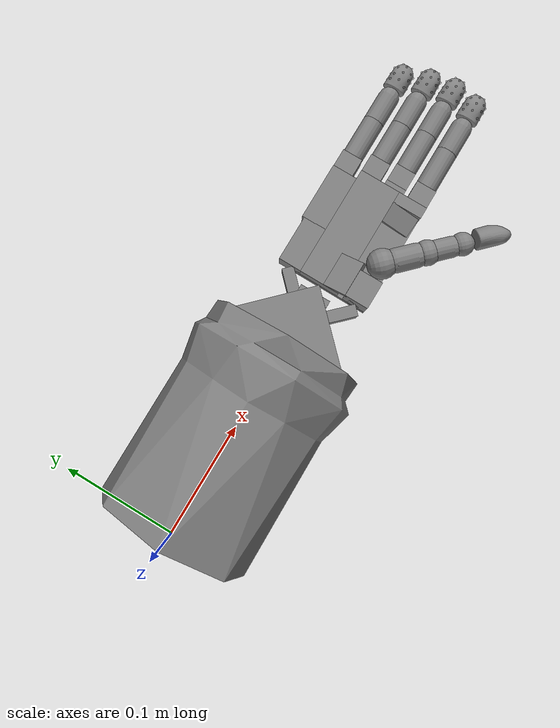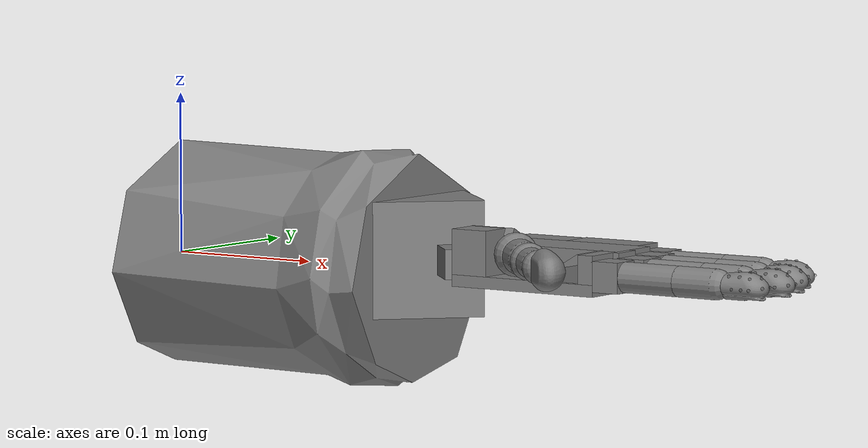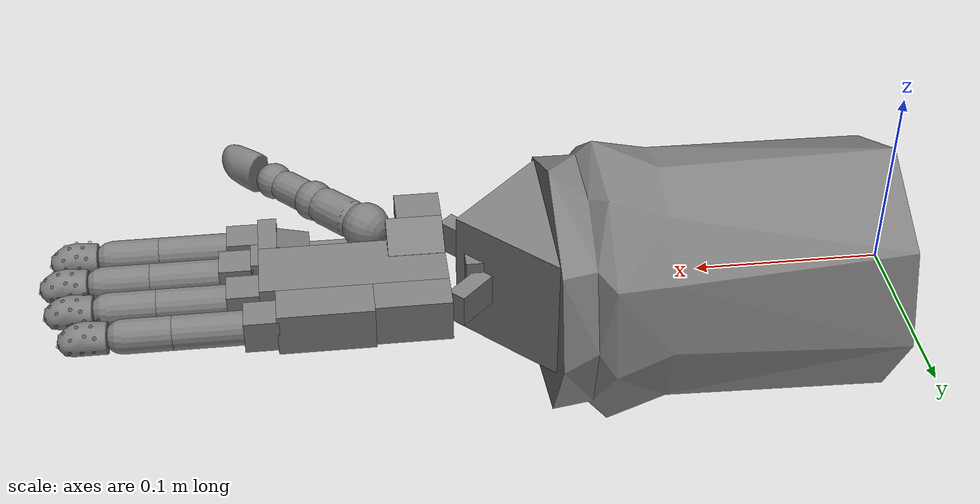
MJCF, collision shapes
<mujoco model="shadow_hand">
    <compiler autolimits="true" angle="radian" meshdir="new_assets" />
    <option impratio="10" cone="elliptic" />
    <default>
        <default class="right_hand">
            <mesh scale="0.001 0.001 0.001" />
            <joint axis="1 0 0" armature="0.00020000000000000001" damping="0.050000000000000003"
                frictionloss="0.01" />
            <position forcerange="-1 1" />
            <default class="wrist">
                <joint damping="0.5" />
                <default class="wrist_y">
                    <joint axis="0 1 0" range="-0.48899999999999999 0.17399999999999999" />
                    <position ctrlrange="-0.52359900000000004 0.17453299999999999"
                        forcerange="-10 10" kp="10" />
                </default>
                <default class="wrist_x">
                    <joint range="-0.69813199999999997 0.48869200000000002" />
                    <position ctrlrange="-0.69813199999999997 0.48869200000000002"
                        forcerange="-5 5" kp="8" />
                </default>
            </default>
            <default class="thumb">
                <default class="thbase">
                    <joint axis="0 0 -1" range="-1.0471999999999999 1.0471999999999999" />
                    <position ctrlrange="-1.0471999999999999 1.0471999999999999"
                        forcerange="-3 3" kp="0.40000000000000002" />
                </default>
                <default class="thproximal">
                    <joint range="0 1.22173" />
                    <position ctrlrange="0 1.22173" forcerange="-2 2" />
                </default>
                <default class="thhub">
                    <joint range="-0.20943999999999999 0.20943999999999999" />
                    <position ctrlrange="-0.20943999999999999 0.20943999999999999" kp="0.5" />
                </default>
                <default class="thmiddle">
                    <joint axis="0 -1 0" range="-0.69813199999999997 0.69813199999999997" />
                    <position ctrlrange="-0.69813199999999997 0.69813199999999997" kp="1.5" />
                </default>
                <default class="thdistal">
                    <joint range="-0.261799 1.5708" />
                    <position ctrlrange="-0.261799 1.5708" />
                </default>
            </default>
            <default class="metacarpal">
                <joint axis="0.57357599999999997 0 0.81915199999999999"
                    range="0 0.78539800000000004" />
                <position ctrlrange="0 0.78539800000000004" />
            </default>
            <default class="knuckle">
                <joint axis="0 -1 0" range="-0.34906599999999999 0.34906599999999999" />
                <position ctrlrange="-0.34906599999999999 0.34906599999999999" />
            </default>
            <default class="proximal">
                <joint range="-0.261799 1.5708" />
                <position ctrlrange="-0.261799 1.5708" />
            </default>
            <default class="middle_distal">
                <joint range="0 1.5708" />
                <position ctrlrange="0 3.1415000000000002" kp="0.5" />
            </default>
            <default class="plastic">
                <geom solref="0.0050000000000000001 1" solimp="0.5 0.98999999999999999 0.0001" />
                <default class="plastic_visual">
                    <geom type="mesh" contype="0" conaffinity="0" group="2" material="black" />
                </default>
                <default class="plastic_collision">
                    <geom group="3" />
                </default>
            </default>
        </default>
    </default>
    <asset>
        <material name="black" specular="0.5" shininess="0.25"
            rgba="0.16355 0.16355 0.16355 1" />
        <material name="gray" specular="0" shininess="0.25"
            rgba="0.80847999999999998 0.80847999999999998 0.80847999999999998 1" />
        <material name="metallic" specular="0" shininess="0.25"
            rgba="0.90000000000000002 0.90000000000000002 0.90000000000000002 1" />
        <material name="tip_red" specular="0" shininess="0.25"
            rgba="0.3411764705882353 0.011764705882352941 0.082352941176470587 1" />
        <mesh name="forearm_0" class="right_hand"
            file="forearm_0.obj" />
        <mesh name="forearm_1" class="right_hand"
            file="forearm_1.obj" />
        <mesh name="forearm_collision" class="right_hand"
            file="forearm_collision_20_pct.stl" />
        <mesh name="wrist" class="right_hand"
            file="wrist.obj" />
        <mesh name="palm" class="right_hand"
            file="palm.obj" />
        <mesh name="f_knuckle" class="right_hand"
            file="f_knuckle.obj" />
        <mesh name="f_proximal" class="right_hand"
            file="f_proximal.obj" />
        <mesh name="f_middle" class="right_hand"
            file="f_middle.obj" />
        <mesh name="f_distal_pst" class="right_hand"
            file="f_distal_pst.obj" />
        <mesh name="lf_metacarpal" class="right_hand"
            file="lf_metacarpal.obj" />
        <mesh name="th_proximal" class="right_hand"
            file="th_proximal.obj" />
        <mesh name="th_middle" class="right_hand"
            file="th_middle.obj" />
        <mesh name="th_distal_pst" class="right_hand"
            file="th_distal_pst.obj" />
        <mesh name="f_distal_mstXL" class="right_hand"
            file="f_distal_mstXL_20_pct.stl" />
        <mesh name="th_distal_mst" class="right_hand"
            file="th_distal_mst_20_pct.stl" />
    </asset>
    <worldbody>
        <body name="rh_forearm_base" childclass="right_hand" pos="0 0 0" quat="0 1 0 1">
            <inertial pos="0 0 0.089999999999999997" mass="3"
                diaginertia="0.0138 0.0138 0.0074400000000000004" />
            <geom class="plastic_visual" material="gray" mesh="forearm_0" />
            <geom class="plastic_visual" mesh="forearm_1" />
            <geom class="plastic_collision" type="mesh"
                mesh="forearm_collision" />
            <geom class="plastic_collision" type="box"
                size="0.035000000000000003 0.035000000000000003 0.035000000000000003"
                pos="0.01 0 0.18099999999999999" quat="0.38018800000000003 0.92490899999999998 0 0" />
            <body name="rh_wrist" pos="0.01 0 0.21301" quat="1 0 0 1">
                <inertial pos="0 0 0.029000000000000001" quat="0.5 0.5 0.5 0.5"
                    mass="0.10000000000000001"
                    diaginertia="6.3999999999999997e-05 4.3800000000000001e-05 3.4999999999999997e-05" />
                <joint name="rh_WRJ2" class="wrist_y" />
                <geom class="plastic_visual" material="metallic"
                    mesh="wrist" />
                <geom class="plastic_collision" type="box"
                    size="0.0135 0.0135 0.014999999999999999"
                    quat="0.499998 0.5 0.5 -0.50000199999999995" />
                <geom class="plastic_collision" type="box"
                    size="0.010999999999999999 0.010999999999999999 0.0050000000000000001"
                    pos="-0.025999999999999999 0 0.034000000000000002" quat="1 0 1 0" />
                <geom class="plastic_collision" type="box"
                    size="0.010999999999999999 0.010999999999999999 0.0050000000000000001"
                    pos="0.031 0 0.034000000000000002" quat="1 0 1 0" />
                <geom class="plastic_collision" type="box"
                    size="0.0135 0.0089999999999999993 0.0050000000000000001"
                    pos="-0.021000000000000001 0 0.010999999999999999"
                    quat="0.92387900000000001 0 0.38268400000000002 0" />
                <geom class="plastic_collision" type="box"
                    size="0.0135 0.0089999999999999993 0.0050000000000000001"
                    pos="0.025999999999999999 0 0.01"
                    quat="0.92387900000000001 0 -0.38268400000000002 0" />
                <body name="rh_palm" pos="0 0 0.034000000000000002">
                    <inertial pos="0 0 0.035000000000000003" quat="1 0 0 1"
                        mass="0.29999999999999999"
                        diaginertia="0.0005287 0.00035809999999999998 0.00019100000000000001" />
                    <joint name="rh_WRJ1" class="wrist_x" />
                    <site name="grasp_site" group="4"
                        pos="0 -0.035000000000000003 0.089999999999999997" />
                    <geom class="plastic_visual" mesh="palm" />
                    <geom class="plastic_collision" type="box"
                        size="0.031 0.0035000000000000001 0.049000000000000002"
                        pos="0.010999999999999999 0.0085000000000000006 0.037999999999999999" />
                    <geom class="plastic_collision" type="box"
                        size="0.017999999999999999 0.0085000000000000006 0.049000000000000002"
                        pos="-0.002 -0.0035000000000000001 0.037999999999999999" />
                    <geom class="plastic_collision" type="box"
                        size="0.012999999999999999 0.0085000000000000006 0.0050000000000000001"
                        pos="0.029000000000000001 -0.0035000000000000001 0.082000000000000003" />
                    <geom class="plastic_collision" type="box"
                        size="0.012999999999999999 0.0070000000000000001 0.0089999999999999993"
                        pos="0.026499999999999999 -0.001 0.070000000000000007"
                        quat="0.98724100000000004 0.099054500000000004 0.0124467 0.124052" />
                    <geom class="plastic_collision" type="box"
                        size="0.010500000000000001 0.0135 0.012"
                        pos="0.0315 -0.0085000000000000006 0.001" />
                    <geom class="plastic_collision" type="box"
                        size="0.010999999999999999 0.0025000000000000001 0.014999999999999999"
                        pos="0.012500000000000001 -0.014999999999999999 0.0040000000000000001"
                        quat="0.97133800000000003 0 0 -0.237703" />
                    <geom class="plastic_collision" type="box"
                        size="0.0089999999999999993 0.012 0.002"
                        pos="0.010999999999999999 0 0.088999999999999996" />
                    <geom class="plastic_collision" type="box"
                        size="0.01 0.012 0.02" pos="-0.029999999999999999 0 0.0089999999999999993" />
                    <body name="rh_ffknuckle" pos="0.033000000000000002 0 0.095000000000000001">
                        <inertial pos="0 0 0" quat="0.5 0.5 -0.5 0.5" mass="0.0080000000000000002"
                            diaginertia="3.2000000000000001e-07 2.6e-07 2.6e-07" />
                        <joint name="rh_FFJ4" class="knuckle" />
                        <geom class="plastic_visual" material="metallic"
                            pos="0 0 0.00050000000000000001" mesh="f_knuckle" />
                        <geom class="plastic_collision" type="box"
                            size="0.0089999999999999993 0.0089999999999999993 0.0089999999999999993"
                            quat="1 0 1 0" />
                        <body name="rh_ffproximal">
                            <inertial pos="0 0 0.022499999999999999" quat="1 0 0 1"
                                mass="0.029999999999999999"
                                diaginertia="1.0000000000000001e-05 9.7999999999999993e-06 1.7999999999999999e-06" />
                            <joint name="rh_FFJ3" class="proximal" />
                            <geom class="plastic_visual" mesh="f_proximal" />
                            <geom class="plastic_collision" type="capsule"
                                size="0.0089999999999999993 0.02" pos="0 0 0.025000000000000001" />
                            <body name="rh_ffmiddle" pos="0 0 0.044999999999999998">
                                <inertial pos="0 0 0.012500000000000001" quat="1 0 0 1"
                                    mass="0.017000000000000001"
                                    diaginertia="2.7e-06 2.6000000000000001e-06 8.7000000000000003e-07" />
                                <joint name="rh_FFJ2" class="middle_distal" />
                                <geom class="plastic_visual"
                                    mesh="f_middle" />
                                <geom class="plastic_collision"
                                    type="capsule" size="0.0089999999999999993 0.012500000000000001"
                                    pos="0 0 0.012500000000000001" />
                                <body name="rh_ffdistal" pos="0 0 0.025000000000000001">
                                    <inertial pos="0 0 0.013076900000000001" quat="1 0 0 1"
                                        mass="0.012999999999999999"
                                        diaginertia="1.28092e-06 1.1209200000000001e-06 5.3000000000000001e-07" />
                                    <joint name="rh_FFJ1" class="middle_distal" />
                                    <geom class="plastic_visual"
                                        material="tip_red" mesh="f_distal_mstXL" />
                                    <geom class="plastic_collision"
                                        type="mesh" mesh="f_distal_mstXL" />
                                    <site name="rh_ffdistal_tip" pos="0 0 0.025999999999999999" />
                                    <site name="rh_ffdistal_0" rgba="0 0 0 0.10000000000000001"
                                        size="0.001"
                                        pos="-0.0089999999999999993 0.001 0.019999999999999997"
                                        quat="-0.51332375272133191 -0.45928967348750754 0.48330481981365164 0.54034079233824406" />
                                    <site name="rh_ffdistal_1" rgba="0 0 0 0.10000000000000001"
                                        size="0.001"
                                        pos="-0.0060000000000000001 -0.0070000000000000001 0.017999999999999999"
                                        quat="0.2529586446421252 0.66989048185859246 -0.65289326067710574 -0.24695962540160049" />
                                    <site name="rh_ffdistal_2" rgba="0 0 0 0.10000000000000001"
                                        size="0.001"
                                        pos="-0.0070000000000000001 -0.0060000000000000001 0.012999999999999999"
                                        quat="0.22492365137833648 0.70276145297320181 -0.64178215193285315 -0.2089290806136547" />
                                    <site name="rh_ffdistal_3" rgba="0 0 0 0.10000000000000001"
                                        size="0.001"
                                        pos="-0.0089999999999999993 0.001 0.013999999999999999"
                                        quat="-0.53132580260612172 -0.45127671746772302 0.46428469380271281 0.54633500606957153" />
                                    <site name="rh_ffdistal_4" rgba="0 0 0 0.10000000000000001"
                                        size="0.001"
                                        pos="-0.0089999999999999993 0.001 0.025999999999999999"
                                        quat="-0.43495911576458707 -0.41496099549954835 0.55294802532831389 0.57694576964636013" />
                                    <site name="rh_ffdistal_5" rgba="0 0 0 0.10000000000000001"
                                        size="0.001"
                                        pos="0.0060000000000000001 -0.0050000000000000001 0.024999999999999998"
                                        quat="0.14602760182536398 -0.54510303421111916 0.77514651653874744 -0.28405369122194096" />
                                    <site name="rh_ffdistal_6" rgba="0 0 0 0.10000000000000001"
                                        size="0.001"
                                        pos="0.0089999999999999993 0.001 0.025999999999999999"
                                        quat="-0.43617952481929767 0.4141704662274982 -0.55122687654915836 0.57823799391182118" />
                                    <site name="rh_ffdistal_7" rgba="0 0 0 0.10000000000000001"
                                        size="0.001"
                                        pos="0.0070000000000000001 -0.0060000000000000001 0.019"
                                        quat="-0.25793475076104228 0.67083030139790467 -0.64883586528649795 0.249936773993258" />
                                    <site name="rh_ffdistal_8" rgba="0 0 0 0.10000000000000001"
                                        size="0.001"
                                        pos="0 -0.0080000000000000002 0.014999999999999999"
                                        quat="-0.00099992500843644515 0.73694473121766024 -0.67594930570303713 0.0019998500168728912" />
                                    <site name="rh_ffdistal_9" rgba="0 0 0 0.10000000000000001"
                                        size="0.001"
                                        pos="-0.0060000000000000001 -0.0050000000000000001 0.024999999999999998"
                                        quat="-0.14590650388691498 -0.54565035015243535 0.77450370213944575 0.28481749046418325" />
                                    <site name="rh_ffdistal_10" rgba="0 0 0 0.10000000000000001"
                                        size="0.001"
                                        pos="0.0089999999999999993 0.001 0.014999999999999999"
                                        quat="-0.52788255919441562 0.45589857384972277 -0.46889568231473661 0.54187944523366161" />
                                    <site name="rh_ffdistal_11" rgba="0 0 0 0.10000000000000001"
                                        size="0.001"
                                        pos="0.0040000000000000001 0 0.032000000000000001"
                                        quat="0.1050133375408553 -0.21402718317850514 0.74909514112476794 -0.61807850095474848" />
                                    <site name="rh_ffdistal_12" rgba="0 0 0 0.10000000000000001"
                                        size="0.001"
                                        pos="0 -0.0050000000000000001 0.028999999999999998"
                                        quat="0.0090026922075152616 -0.43913131989991105 0.89826862248318939 -0.014004187878357071" />
                                    <site name="rh_ffdistal_13" rgba="0 0 0 0.10000000000000001"
                                        size="0.001"
                                        pos="-0.0040000000000000001 0 0.032000000000000001"
                                        quat="-0.23003807445224358 0.062010263547996082 0.74912399028143661 -0.61810230439776748" />
                                    <site name="rh_ffdistal_14" rgba="0 0 0 0.10000000000000001"
                                        size="0.001"
                                        pos="0.0070000000000000001 -0.0060000000000000001 0.011999999999999999"
                                        quat="-0.23090973193876932 0.69872685119134037 -0.64174912512852755 0.2159155935011868" />
                                    <site name="rh_ffdistal_15" rgba="0 0 0 0.10000000000000001"
                                        size="0.001"
                                        pos="0.0089999999999999993 0.001 0.020999999999999998"
                                        quat="-0.50592968066124255 0.46693510053122572 -0.49193162625559544 0.5329259284435619" />
                                    <site name="rh_ffdistal_16" rgba="0 0 0 0.10000000000000001"
                                        size="0.001"
                                        pos="0 -0.0080000000000000002 0.021999999999999999"
                                        quat="0.0039998800053997292 -0.63798086086125694 0.76997690103944805 -0.0099997000134993252" />
                                </body>
                            </body>
                        </body>
                    </body>
                    <body name="rh_mfknuckle" pos="0.010999999999999999 0 0.099000000000000005">
                        <inertial pos="0 0 0" quat="0.5 0.5 -0.5 0.5" mass="0.0080000000000000002"
                            diaginertia="3.2000000000000001e-07 2.6e-07 2.6e-07" />
                        <joint name="rh_MFJ4" class="knuckle" />
                        <geom class="plastic_visual" material="metallic"
                            pos="0 0 0.00050000000000000001" mesh="f_knuckle" />
                        <geom class="plastic_collision" type="box"
                            size=" 0.0089999999999999993 0.0089999999999999993 0.0089999999999999993"
                            quat="1 0 1 0" />
                        <body name="rh_mfproximal">
                            <inertial pos="0 0 0.022499999999999999" quat="1 0 0 1"
                                mass="0.029999999999999999"
                                diaginertia="1.0000000000000001e-05 9.7999999999999993e-06 1.7999999999999999e-06" />
                            <joint name="rh_MFJ3" class="proximal" />
                            <geom class="plastic_visual" mesh="f_proximal" />
                            <geom class="plastic_collision" type="capsule"
                                size="0.0089999999999999993 0.02" pos="0 0 0.025000000000000001" />
                            <body name="rh_mfmiddle" pos="0 0 0.044999999999999998">
                                <inertial pos="0 0 0.012500000000000001" quat="1 0 0 1"
                                    mass="0.017000000000000001"
                                    diaginertia="2.7e-06 2.6000000000000001e-06 8.7000000000000003e-07" />
                                <joint name="rh_MFJ2" class="middle_distal" />
                                <geom class="plastic_visual"
                                    mesh="f_middle" />
                                <geom class="plastic_collision"
                                    type="capsule" size="0.0089999999999999993 0.012500000000000001"
                                    pos="0 0 0.012500000000000001" />
                                <body name="rh_mfdistal" pos="0 0 0.025000000000000001">
                                    <inertial pos="0 0 0.013076900000000001" quat="1 0 0 1"
                                        mass="0.012999999999999999"
                                        diaginertia="1.28092e-06 1.1209200000000001e-06 5.3000000000000001e-07" />
                                    <joint name="rh_MFJ1" class="middle_distal" />
                                    <geom class="plastic_visual"
                                        material="tip_red" mesh="f_distal_mstXL" />
                                    <geom class="plastic_collision"
                                        type="mesh" mesh="f_distal_mstXL" />
                                    <site name="rh_mfdistal_tip" pos="0 0 0.025999999999999999" />
                                    <site name="rh_mfdistal_0" rgba="0 0 0 0.10000000000000001"
                                        size="0.001"
                                        pos="-0.0089999999999999993 0.001 0.019999999999999997"
                                        quat="-0.51332375272133191 -0.45928967348750754 0.48330481981365164 0.54034079233824406" />
                                    <site name="rh_mfdistal_1" rgba="0 0 0 0.10000000000000001"
                                        size="0.001"
                                        pos="-0.0060000000000000001 -0.0070000000000000001 0.017999999999999999"
                                        quat="0.2529586446421252 0.66989048185859246 -0.65289326067710574 -0.24695962540160049" />
                                    <site name="rh_mfdistal_2" rgba="0 0 0 0.10000000000000001"
                                        size="0.001"
                                        pos="-0.0070000000000000001 -0.0060000000000000001 0.012999999999999999"
                                        quat="0.22492365137833648 0.70276145297320181 -0.64178215193285315 -0.2089290806136547" />
                                    <site name="rh_mfdistal_3" rgba="0 0 0 0.10000000000000001"
                                        size="0.001"
                                        pos="-0.0089999999999999993 0.001 0.013999999999999999"
                                        quat="-0.53132580260612172 -0.45127671746772302 0.46428469380271281 0.54633500606957153" />
                                    <site name="rh_mfdistal_4" rgba="0 0 0 0.10000000000000001"
                                        size="0.001"
                                        pos="-0.0089999999999999993 0.001 0.025999999999999999"
                                        quat="-0.43495911576458707 -0.41496099549954835 0.55294802532831389 0.57694576964636013" />
                                    <site name="rh_mfdistal_5" rgba="0 0 0 0.10000000000000001"
                                        size="0.001"
                                        pos="0.0060000000000000001 -0.0050000000000000001 0.024999999999999998"
                                        quat="0.14602760182536398 -0.54510303421111916 0.77514651653874744 -0.28405369122194096" />
                                    <site name="rh_mfdistal_6" rgba="0 0 0 0.10000000000000001"
                                        size="0.001"
                                        pos="0.0089999999999999993 0.001 0.025999999999999999"
                                        quat="-0.43617952481929767 0.4141704662274982 -0.55122687654915836 0.57823799391182118" />
                                    <site name="rh_mfdistal_7" rgba="0 0 0 0.10000000000000001"
                                        size="0.001"
                                        pos="0.0070000000000000001 -0.0060000000000000001 0.019"
                                        quat="-0.25793475076104228 0.67083030139790467 -0.64883586528649795 0.249936773993258" />
                                    <site name="rh_mfdistal_8" rgba="0 0 0 0.10000000000000001"
                                        size="0.001"
                                        pos="0 -0.0080000000000000002 0.014999999999999999"
                                        quat="-0.00099992500843644515 0.73694473121766024 -0.67594930570303713 0.0019998500168728912" />
                                    <site name="rh_mfdistal_9" rgba="0 0 0 0.10000000000000001"
                                        size="0.001"
                                        pos="-0.0060000000000000001 -0.0050000000000000001 0.024999999999999998"
                                        quat="-0.14590650388691498 -0.54565035015243535 0.77450370213944575 0.28481749046418325" />
                                    <site name="rh_mfdistal_10" rgba="0 0 0 0.10000000000000001"
                                        size="0.001"
                                        pos="0.0089999999999999993 0.001 0.014999999999999999"
                                        quat="-0.52788255919441562 0.45589857384972277 -0.46889568231473661 0.54187944523366161" />
                                    <site name="rh_mfdistal_11" rgba="0 0 0 0.10000000000000001"
                                        size="0.001"
                                        pos="0.0040000000000000001 0 0.032000000000000001"
                                        quat="0.1050133375408553 -0.21402718317850514 0.74909514112476794 -0.61807850095474848" />
                                    <site name="rh_mfdistal_12" rgba="0 0 0 0.10000000000000001"
                                        size="0.001"
                                        pos="0 -0.0050000000000000001 0.028999999999999998"
                                        quat="0.0090026922075152616 -0.43913131989991105 0.89826862248318939 -0.014004187878357071" />
                                    <site name="rh_mfdistal_13" rgba="0 0 0 0.10000000000000001"
                                        size="0.001"
                                        pos="-0.0040000000000000001 0 0.032000000000000001"
                                        quat="-0.23003807445224358 0.062010263547996082 0.74912399028143661 -0.61810230439776748" />
                                    <site name="rh_mfdistal_14" rgba="0 0 0 0.10000000000000001"
                                        size="0.001"
                                        pos="0.0070000000000000001 -0.0060000000000000001 0.011999999999999999"
                                        quat="-0.23090973193876932 0.69872685119134037 -0.64174912512852755 0.2159155935011868" />
                                    <site name="rh_mfdistal_15" rgba="0 0 0 0.10000000000000001"
                                        size="0.001"
                                        pos="0.0089999999999999993 0.001 0.020999999999999998"
                                        quat="-0.50592968066124255 0.46693510053122572 -0.49193162625559544 0.5329259284435619" />
                                    <site name="rh_mfdistal_16" rgba="0 0 0 0.10000000000000001"
                                        size="0.001"
                                        pos="0 -0.0080000000000000002 0.021999999999999999"
                                        quat="0.0039998800053997292 -0.63798086086125694 0.76997690103944805 -0.0099997000134993252" />
                                </body>
                            </body>
                        </body>
                    </body>
                    <body name="rh_rfknuckle" pos="-0.010999999999999999 0 0.095000000000000001">
                        <inertial pos="0 0 0" quat="0.5 0.5 -0.5 0.5" mass="0.0080000000000000002"
                            diaginertia="3.2000000000000001e-07 2.6e-07 2.6e-07" />
                        <joint name="rh_RFJ4" class="knuckle" axis="0 1 0" />
                        <geom class="plastic_visual" material="metallic"
                            pos="0 0 0.00050000000000000001" mesh="f_knuckle" />
                        <geom class="plastic_collision" type="box"
                            size="0.0089999999999999993 0.0089999999999999993 0.0089999999999999993"
                            quat="1 0 1 0" />
                        <body name="rh_rfproximal">
                            <inertial pos="0 0 0.022499999999999999" quat="1 0 0 1"
                                mass="0.029999999999999999"
                                diaginertia="1.0000000000000001e-05 9.7999999999999993e-06 1.7999999999999999e-06" />
                            <joint name="rh_RFJ3" class="proximal" />
                            <geom class="plastic_visual" mesh="f_proximal" />
                            <geom class="plastic_collision" type="capsule"
                                size="0.0089999999999999993 0.02" pos="0 0 0.025000000000000001" />
                            <body name="rh_rfmiddle" pos="0 0 0.044999999999999998">
                                <inertial pos="0 0 0.012500000000000001" quat="1 0 0 1"
                                    mass="0.017000000000000001"
                                    diaginertia="2.7e-06 2.6000000000000001e-06 8.7000000000000003e-07" />
                                <joint name="rh_RFJ2" class="middle_distal" />
                                <geom class="plastic_visual"
                                    mesh="f_middle" />
                                <geom class="plastic_collision"
                                    type="capsule" size="0.0089999999999999993 0.012500000000000001"
                                    pos="0 0 0.012500000000000001" />
                                <body name="rh_rfdistal" pos="0 0 0.025000000000000001">
                                    <inertial pos="0 0 0.013076900000000001" quat="1 0 0 1"
                                        mass="0.012999999999999999"
                                        diaginertia="1.28092e-06 1.1209200000000001e-06 5.3000000000000001e-07" />
                                    <joint name="rh_RFJ1" class="middle_distal" />
                                    <geom class="plastic_visual"
                                        material="tip_red" mesh="f_distal_mstXL" />
                                    <geom class="plastic_collision"
                                        type="mesh" mesh="f_distal_mstXL" />
                                    <site name="rh_rfdistal_tip" pos="0 0 0.025999999999999999" />
                                    <site name="rh_rfdistal_0" rgba="0 0 0 0.10000000000000001"
                                        size="0.001"
                                        pos="-0.0089999999999999993 0.001 0.019999999999999997"
                                        quat="-0.51332375272133191 -0.45928967348750754 0.48330481981365164 0.54034079233824406" />
                                    <site name="rh_rfdistal_1" rgba="0 0 0 0.10000000000000001"
                                        size="0.001"
                                        pos="-0.0060000000000000001 -0.0070000000000000001 0.017999999999999999"
                                        quat="0.2529586446421252 0.66989048185859246 -0.65289326067710574 -0.24695962540160049" />
                                    <site name="rh_rfdistal_2" rgba="0 0 0 0.10000000000000001"
                                        size="0.001"
                                        pos="-0.0070000000000000001 -0.0060000000000000001 0.012999999999999999"
                                        quat="0.22492365137833648 0.70276145297320181 -0.64178215193285315 -0.2089290806136547" />
                                    <site name="rh_rfdistal_3" rgba="0 0 0 0.10000000000000001"
                                        size="0.001"
                                        pos="-0.0089999999999999993 0.001 0.013999999999999999"
                                        quat="-0.53132580260612172 -0.45127671746772302 0.46428469380271281 0.54633500606957153" />
                                    <site name="rh_rfdistal_4" rgba="0 0 0 0.10000000000000001"
                                        size="0.001"
                                        pos="-0.0089999999999999993 0.001 0.025999999999999999"
                                        quat="-0.43495911576458707 -0.41496099549954835 0.55294802532831389 0.57694576964636013" />
                                    <site name="rh_rfdistal_5" rgba="0 0 0 0.10000000000000001"
                                        size="0.001"
                                        pos="0.0060000000000000001 -0.0050000000000000001 0.024999999999999998"
                                        quat="0.14602760182536398 -0.54510303421111916 0.77514651653874744 -0.28405369122194096" />
                                    <site name="rh_rfdistal_6" rgba="0 0 0 0.10000000000000001"
                                        size="0.001"
                                        pos="0.0089999999999999993 0.001 0.025999999999999999"
                                        quat="-0.43617952481929767 0.4141704662274982 -0.55122687654915836 0.57823799391182118" />
                                    <site name="rh_rfdistal_7" rgba="0 0 0 0.10000000000000001"
                                        size="0.001"
                                        pos="0.0070000000000000001 -0.0060000000000000001 0.019"
                                        quat="-0.25793475076104228 0.67083030139790467 -0.64883586528649795 0.249936773993258" />
                                    <site name="rh_rfdistal_8" rgba="0 0 0 0.10000000000000001"
                                        size="0.001"
                                        pos="0 -0.0080000000000000002 0.014999999999999999"
                                        quat="-0.00099992500843644515 0.73694473121766024 -0.67594930570303713 0.0019998500168728912" />
                                    <site name="rh_rfdistal_9" rgba="0 0 0 0.10000000000000001"
                                        size="0.001"
                                        pos="-0.0060000000000000001 -0.0050000000000000001 0.024999999999999998"
                                        quat="-0.14590650388691498 -0.54565035015243535 0.77450370213944575 0.28481749046418325" />
                                    <site name="rh_rfdistal_10" rgba="0 0 0 0.10000000000000001"
                                        size="0.001"
                                        pos="0.0089999999999999993 0.001 0.014999999999999999"
                                        quat="-0.52788255919441562 0.45589857384972277 -0.46889568231473661 0.54187944523366161" />
                                    <site name="rh_rfdistal_11" rgba="0 0 0 0.10000000000000001"
                                        size="0.001"
                                        pos="0.0040000000000000001 0 0.032000000000000001"
                                        quat="0.1050133375408553 -0.21402718317850514 0.74909514112476794 -0.61807850095474848" />
                                    <site name="rh_rfdistal_12" rgba="0 0 0 0.10000000000000001"
                                        size="0.001"
                                        pos="0 -0.0050000000000000001 0.028999999999999998"
                                        quat="0.0090026922075152616 -0.43913131989991105 0.89826862248318939 -0.014004187878357071" />
                                    <site name="rh_rfdistal_13" rgba="0 0 0 0.10000000000000001"
                                        size="0.001"
                                        pos="-0.0040000000000000001 0 0.032000000000000001"
                                        quat="-0.23003807445224358 0.062010263547996082 0.74912399028143661 -0.61810230439776748" />
                                    <site name="rh_rfdistal_14" rgba="0 0 0 0.10000000000000001"
                                        size="0.001"
                                        pos="0.0070000000000000001 -0.0060000000000000001 0.011999999999999999"
                                        quat="-0.23090973193876932 0.69872685119134037 -0.64174912512852755 0.2159155935011868" />
                                    <site name="rh_rfdistal_15" rgba="0 0 0 0.10000000000000001"
                                        size="0.001"
                                        pos="0.0089999999999999993 0.001 0.020999999999999998"
                                        quat="-0.50592968066124255 0.46693510053122572 -0.49193162625559544 0.5329259284435619" />
                                    <site name="rh_rfdistal_16" rgba="0 0 0 0.10000000000000001"
                                        size="0.001"
                                        pos="0 -0.0080000000000000002 0.021999999999999999"
                                        quat="0.0039998800053997292 -0.63798086086125694 0.76997690103944805 -0.0099997000134993252" />
                                </body>
                            </body>
                        </body>
                    </body>
                    <body name="rh_lfmetacarpal" pos="-0.033000000000000002 0 0.020709999999999999">
                        <inertial pos="0 0 0.040000000000000001" quat="1 0 0 1"
                            mass="0.029999999999999999"
                            diaginertia="1.6379999999999999e-05 1.45e-05 4.2719999999999999e-06" />
                        <joint name="rh_LFJ5" class="metacarpal" />
                        <geom class="plastic_visual" mesh="lf_metacarpal" />
                        <geom class="plastic_collision" type="box"
                            size="0.010999999999999999 0.012 0.025000000000000001"
                            pos="0.002 0 0.033000000000000002" />
                        <body name="rh_lfknuckle" pos="0 0 0.065790000000000001">
                            <inertial pos="0 0 0" quat="0.5 0.5 -0.5 0.5"
                                mass="0.0080000000000000002"
                                diaginertia="3.2000000000000001e-07 2.6e-07 2.6e-07" />
                            <joint name="rh_LFJ4" class="knuckle" axis="0 1 0" />
                            <geom class="plastic_visual"
                                material="metallic" pos="0 0 0.00050000000000000001"
                                mesh="f_knuckle" />
                            <geom class="plastic_collision" type="box"
                                size="0.0089999999999999993 0.0089999999999999993 0.0089999999999999993"
                                quat="1 0 1 0" />
                            <body name="rh_lfproximal">
                                <inertial pos="0 0 0.022499999999999999" quat="1 0 0 1"
                                    mass="0.029999999999999999"
                                    diaginertia="1.0000000000000001e-05 9.7999999999999993e-06 1.7999999999999999e-06" />
                                <joint name="rh_LFJ3" class="proximal" />
                                <geom class="plastic_visual"
                                    mesh="f_proximal" />
                                <geom class="plastic_collision"
                                    type="capsule" size="0.0089999999999999993 0.02"
                                    pos="0 0 0.025000000000000001" />
                                <body name="rh_lfmiddle" pos="0 0 0.044999999999999998">
                                    <inertial pos="0 0 0.012500000000000001" quat="1 0 0 1"
                                        mass="0.017000000000000001"
                                        diaginertia="2.7e-06 2.6000000000000001e-06 8.7000000000000003e-07" />
                                    <joint name="rh_LFJ2" class="middle_distal" />
                                    <geom class="plastic_visual"
                                        mesh="f_middle" />
                                    <geom class="plastic_collision"
                                        type="capsule"
                                        size="0.0089999999999999993 0.012500000000000001"
                                        pos="0 0 0.012500000000000001" />
                                    <body name="rh_lfdistal" pos="0 0 0.025000000000000001">
                                        <inertial pos="0 0 0.013076900000000001" quat="1 0 0 1"
                                            mass="0.012999999999999999"
                                            diaginertia="1.28092e-06 1.1209200000000001e-06 5.3000000000000001e-07" />
                                        <joint name="rh_LFJ1" class="middle_distal" />
                                        <geom class="plastic_visual"
                                            material="tip_red" mesh="f_distal_mstXL" />
                                        <geom class="plastic_collision"
                                            type="mesh" mesh="f_distal_mstXL" />
                                        <site name="rh_lfdistal_tip" pos="0 0 0.025999999999999999" />
                                        <site name="rh_lfdistal_0" rgba="0 0 0 0.10000000000000001"
                                            size="0.001"
                                            pos="-0.0089999999999999993 0.001 0.019999999999999997"
                                            quat="-0.51332375272133191 -0.45928967348750754 0.48330481981365164 0.54034079233824406" />
                                        <site name="rh_lfdistal_1" rgba="0 0 0 0.10000000000000001"
                                            size="0.001"
                                            pos="-0.0060000000000000001 -0.0070000000000000001 0.017999999999999999"
                                            quat="0.2529586446421252 0.66989048185859246 -0.65289326067710574 -0.24695962540160049" />
                                        <site name="rh_lfdistal_2" rgba="0 0 0 0.10000000000000001"
                                            size="0.001"
                                            pos="-0.0070000000000000001 -0.0060000000000000001 0.012999999999999999"
                                            quat="0.22492365137833648 0.70276145297320181 -0.64178215193285315 -0.2089290806136547" />
                                        <site name="rh_lfdistal_3" rgba="0 0 0 0.10000000000000001"
                                            size="0.001"
                                            pos="-0.0089999999999999993 0.001 0.013999999999999999"
                                            quat="-0.53132580260612172 -0.45127671746772302 0.46428469380271281 0.54633500606957153" />
                                        <site name="rh_lfdistal_4" rgba="0 0 0 0.10000000000000001"
                                            size="0.001"
                                            pos="-0.0089999999999999993 0.001 0.025999999999999999"
                                            quat="-0.43495911576458707 -0.41496099549954835 0.55294802532831389 0.57694576964636013" />
                                        <site name="rh_lfdistal_5" rgba="0 0 0 0.10000000000000001"
                                            size="0.001"
                                            pos="0.0060000000000000001 -0.0050000000000000001 0.024999999999999998"
                                            quat="0.14602760182536398 -0.54510303421111916 0.77514651653874744 -0.28405369122194096" />
                                        <site name="rh_lfdistal_6" rgba="0 0 0 0.10000000000000001"
                                            size="0.001"
                                            pos="0.0089999999999999993 0.001 0.025999999999999999"
                                            quat="-0.43617952481929767 0.4141704662274982 -0.55122687654915836 0.57823799391182118" />
                                        <site name="rh_lfdistal_7" rgba="0 0 0 0.10000000000000001"
                                            size="0.001"
                                            pos="0.0070000000000000001 -0.0060000000000000001 0.019"
                                            quat="-0.25793475076104228 0.67083030139790467 -0.64883586528649795 0.249936773993258" />
                                        <site name="rh_lfdistal_8" rgba="0 0 0 0.10000000000000001"
                                            size="0.001"
                                            pos="0 -0.0080000000000000002 0.014999999999999999"
                                            quat="-0.00099992500843644515 0.73694473121766024 -0.67594930570303713 0.0019998500168728912" />
                                        <site name="rh_lfdistal_9" rgba="0 0 0 0.10000000000000001"
                                            size="0.001"
                                            pos="-0.0060000000000000001 -0.0050000000000000001 0.024999999999999998"
                                            quat="-0.14590650388691498 -0.54565035015243535 0.77450370213944575 0.28481749046418325" />
                                        <site name="rh_lfdistal_10" rgba="0 0 0 0.10000000000000001"
                                            size="0.001"
                                            pos="0.0089999999999999993 0.001 0.014999999999999999"
                                            quat="-0.52788255919441562 0.45589857384972277 -0.46889568231473661 0.54187944523366161" />
                                        <site name="rh_lfdistal_11" rgba="0 0 0 0.10000000000000001"
                                            size="0.001"
                                            pos="0.0040000000000000001 0 0.032000000000000001"
                                            quat="0.1050133375408553 -0.21402718317850514 0.74909514112476794 -0.61807850095474848" />
                                        <site name="rh_lfdistal_12" rgba="0 0 0 0.10000000000000001"
                                            size="0.001"
                                            pos="0 -0.0050000000000000001 0.028999999999999998"
                                            quat="0.0090026922075152616 -0.43913131989991105 0.89826862248318939 -0.014004187878357071" />
                                        <site name="rh_lfdistal_13" rgba="0 0 0 0.10000000000000001"
                                            size="0.001"
                                            pos="-0.0040000000000000001 0 0.032000000000000001"
                                            quat="-0.23003807445224358 0.062010263547996082 0.74912399028143661 -0.61810230439776748" />
                                        <site name="rh_lfdistal_14" rgba="0 0 0 0.10000000000000001"
                                            size="0.001"
                                            pos="0.0070000000000000001 -0.0060000000000000001 0.011999999999999999"
                                            quat="-0.23090973193876932 0.69872685119134037 -0.64174912512852755 0.2159155935011868" />
                                        <site name="rh_lfdistal_15" rgba="0 0 0 0.10000000000000001"
                                            size="0.001"
                                            pos="0.0089999999999999993 0.001 0.020999999999999998"
                                            quat="-0.50592968066124255 0.46693510053122572 -0.49193162625559544 0.5329259284435619" />
                                        <site name="rh_lfdistal_16" rgba="0 0 0 0.10000000000000001"
                                            size="0.001"
                                            pos="0 -0.0080000000000000002 0.021999999999999999"
                                            quat="0.0039998800053997292 -0.63798086086125694 0.76997690103944805 -0.0099997000134993252" />
                                    </body>
                                </body>
                            </body>
                        </body>
                    </body>
                    <body name="rh_thbase"
                        pos="0.034000000000000002 -0.0085800000000000008 0.029000000000000001"
                        quat="0.92388000000000003 0 0.382683 0">
                        <inertial pos="0 0 0" mass="0.01" diaginertia="1.6e-07 1.6e-07 1.6e-07" />
                        <joint name="rh_THJ5" class="thbase" />
                        <geom class="plastic_collision"
                            size="0.012999999999999999" />
                        <body name="rh_thproximal">
                            <inertial pos="0 0 0.019" mass="0.040000000000000001"
                                diaginertia="1.36e-05 1.36e-05 3.1300000000000001e-06" />
                            <joint name="rh_THJ4" class="thproximal" />
                            <geom class="plastic_visual" mesh="th_proximal" />
                            <geom class="plastic_collision" type="capsule"
                                size="0.010500000000000001 0.0089999999999999993" pos="0 0 0.02" />
                            <body name="rh_thhub" pos="0 0 0.037999999999999999">
                                <inertial pos="0 0 0" mass="0.0050000000000000001"
                                    diaginertia="9.9999999999999995e-07 9.9999999999999995e-07 2.9999999999999999e-07" />
                                <joint name="rh_THJ3" class="thhub" />
                                <geom class="plastic_collision"
                                    size="0.010999999999999999" />
                                <body name="rh_thmiddle">
                                    <inertial pos="0 0 0.016" mass="0.02"
                                        diaginertia="5.1000000000000003e-06 5.1000000000000003e-06 1.2100000000000001e-06" />
                                    <joint name="rh_THJ2" class="thmiddle" />
                                    <geom class="plastic_visual"
                                        mesh="th_middle" />
                                    <geom class="plastic_collision"
                                        type="capsule"
                                        size="0.0089999999999999993 0.0089999999999999993"
                                        pos="0 0 0.012" />
                                    <geom class="plastic_collision"
                                        size="0.01" pos="0 0 0.029999999999999999" />
                                    <body name="rh_thdistal" pos="0 0 0.032000000000000001"
                                        quat="1 0 0 -1">
                                        <inertial pos="0 0 0.0145588" quat="1 0 0 1"
                                            mass="0.017000000000000001"
                                            diaginertia="2.37794e-06 2.2779400000000001e-06 9.9999999999999995e-07" />
                                        <joint name="rh_THJ1" class="thdistal" />
                                        <geom class="plastic_visual"
                                            material="tip_red" mesh="th_distal_mst" />
                                        <geom class="plastic_collision"
                                            type="mesh" mesh="th_distal_mst" />
                                        <site name="rh_thdistal_tip" pos="0 0 0.025999999999999999" />
                                        <site name="rh_thdistal_0" rgba="0 0 0 0.10000000000000001"
                                            size="0.001"
                                            pos="-0.0089999999999999993 0.001 0.019999999999999997"
                                            quat="-0.51332375272133191 -0.45928967348750754 0.48330481981365164 0.54034079233824406" />
                                        <site name="rh_thdistal_1" rgba="0 0 0 0.10000000000000001"
                                            size="0.001"
                                            pos="-0.0060000000000000001 -0.0070000000000000001 0.017999999999999999"
                                            quat="0.2529586446421252 0.66989048185859246 -0.65289326067710574 -0.24695962540160049" />
                                        <site name="rh_thdistal_2" rgba="0 0 0 0.10000000000000001"
                                            size="0.001"
                                            pos="-0.0070000000000000001 -0.0060000000000000001 0.012999999999999999"
                                            quat="0.22492365137833648 0.70276145297320181 -0.64178215193285315 -0.2089290806136547" />
                                        <site name="rh_thdistal_3" rgba="0 0 0 0.10000000000000001"
                                            size="0.001"
                                            pos="-0.0089999999999999993 0.001 0.013999999999999999"
                                            quat="-0.53132580260612172 -0.45127671746772302 0.46428469380271281 0.54633500606957153" />
                                        <site name="rh_thdistal_4" rgba="0 0 0 0.10000000000000001"
                                            size="0.001"
                                            pos="-0.0089999999999999993 0.001 0.025999999999999999"
                                            quat="-0.43495911576458707 -0.41496099549954835 0.55294802532831389 0.57694576964636013" />
                                        <site name="rh_thdistal_5" rgba="0 0 0 0.10000000000000001"
                                            size="0.001"
                                            pos="0.0060000000000000001 -0.0050000000000000001 0.024999999999999998"
                                            quat="0.14602760182536398 -0.54510303421111916 0.77514651653874744 -0.28405369122194096" />
                                        <site name="rh_thdistal_6" rgba="0 0 0 0.10000000000000001"
                                            size="0.001"
                                            pos="0.0089999999999999993 0.001 0.025999999999999999"
                                            quat="-0.43617952481929767 0.4141704662274982 -0.55122687654915836 0.57823799391182118" />
                                        <site name="rh_thdistal_7" rgba="0 0 0 0.10000000000000001"
                                            size="0.001"
                                            pos="0.0070000000000000001 -0.0060000000000000001 0.019"
                                            quat="-0.25793475076104228 0.67083030139790467 -0.64883586528649795 0.249936773993258" />
                                        <site name="rh_thdistal_8" rgba="0 0 0 0.10000000000000001"
                                            size="0.001"
                                            pos="0 -0.0080000000000000002 0.014999999999999999"
                                            quat="-0.00099992500843644515 0.73694473121766024 -0.67594930570303713 0.0019998500168728912" />
                                        <site name="rh_thdistal_9" rgba="0 0 0 0.10000000000000001"
                                            size="0.001"
                                            pos="-0.0060000000000000001 -0.0050000000000000001 0.024999999999999998"
                                            quat="-0.14590650388691498 -0.54565035015243535 0.77450370213944575 0.28481749046418325" />
                                        <site name="rh_thdistal_10" rgba="0 0 0 0.10000000000000001"
                                            size="0.001"
                                            pos="0.0089999999999999993 0.001 0.014999999999999999"
                                            quat="-0.52788255919441562 0.45589857384972277 -0.46889568231473661 0.54187944523366161" />
                                        <site name="rh_thdistal_11" rgba="0 0 0 0.10000000000000001"
                                            size="0.001"
                                            pos="0.0040000000000000001 0 0.032000000000000001"
                                            quat="0.1050133375408553 -0.21402718317850514 0.74909514112476794 -0.61807850095474848" />
                                        <site name="rh_thdistal_12" rgba="0 0 0 0.10000000000000001"
                                            size="0.001"
                                            pos="0 -0.0050000000000000001 0.028999999999999998"
                                            quat="0.0090026922075152616 -0.43913131989991105 0.89826862248318939 -0.014004187878357071" />
                                        <site name="rh_thdistal_13" rgba="0 0 0 0.10000000000000001"
                                            size="0.001"
                                            pos="-0.0040000000000000001 0 0.032000000000000001"
                                            quat="-0.23003807445224358 0.062010263547996082 0.74912399028143661 -0.61810230439776748" />
                                        <site name="rh_thdistal_14" rgba="0 0 0 0.10000000000000001"
                                            size="0.001"
                                            pos="0.0070000000000000001 -0.0060000000000000001 0.011999999999999999"
                                            quat="-0.23090973193876932 0.69872685119134037 -0.64174912512852755 0.2159155935011868" />
                                        <site name="rh_thdistal_15" rgba="0 0 0 0.10000000000000001"
                                            size="0.001"
                                            pos="0.0089999999999999993 0.001 0.020999999999999998"
                                            quat="-0.50592968066124255 0.46693510053122572 -0.49193162625559544 0.5329259284435619" />
                                        <site name="rh_thdistal_16" rgba="0 0 0 0.10000000000000001"
                                            size="0.001"
                                            pos="0 -0.0080000000000000002 0.021999999999999999"
                                            quat="0.0039998800053997292 -0.63798086086125694 0.76997690103944805 -0.0099997000134993252" />
                                    </body>
                                </body>
                            </body>
                        </body>
                    </body>
                </body>
            </body>
        </body>
    </worldbody>
    <contact>
        <exclude body1="rh_wrist" body2="rh_forearm_base" />
        <exclude body1="rh_thproximal" body2="rh_thmiddle" />
    </contact>
    <actuator>
        <position name="rh_A_WRJ2" class="wrist_y" joint="rh_WRJ2" kp="100" kv="10" />
        <position name="rh_A_WRJ1" class="wrist_x" joint="rh_WRJ1" kp="100" kv="10" />
        <position name="rh_A_THJ5" class="thbase" joint="rh_THJ5" kp="100" kv="10" />
        <position name="rh_A_THJ4" class="thproximal" joint="rh_THJ4" kp="100" kv="10" />
        <position name="rh_A_THJ3" class="thhub" joint="rh_THJ3" kp="100" kv="10" />
        <position name="rh_A_THJ2" class="thdistal" joint="rh_THJ2" kp="100" kv="10" />
        <position name="rh_A_THJ1" class="thdistal" joint="rh_THJ1" kp="100" kv="10" />
        <position name="rh_A_FFJ4" class="knuckle" joint="rh_FFJ4" kp="100" kv="10" />
        <position name="rh_A_FFJ3" class="proximal" joint="rh_FFJ3" kp="100" kv="10" />
        <position name="rh_A_FFJ2" class="thdistal" joint="rh_FFJ2" kp="100" kv="10" />
        <position name="rh_A_FFJ1" class="thdistal" joint="rh_FFJ1" kp="100" kv="10" />
        <position name="rh_A_MFJ4" class="knuckle" joint="rh_MFJ4" kp="100" kv="10" />
        <position name="rh_A_MFJ3" class="proximal" joint="rh_MFJ3" kp="100" kv="10" />
        <position name="rh_A_MFJ2" class="thdistal" joint="rh_MFJ2" kp="100" kv="10" />
        <position name="rh_A_MFJ1" class="thdistal" joint="rh_MFJ1" kp="100" kv="10" />
        <position name="rh_A_RFJ4" class="knuckle" joint="rh_RFJ4" kp="100" kv="10" />
        <position name="rh_A_RFJ3" class="proximal" joint="rh_RFJ3" kp="100" kv="10" />
        <position name="rh_A_RFJ2" class="thdistal" joint="rh_RFJ2" kp="100" kv="10" />
        <position name="rh_A_RFJ1" class="thdistal" joint="rh_RFJ1" kp="100" kv="10" />
        <position name="rh_A_LFJ5" class="metacarpal" joint="rh_LFJ5" kp="100" kv="10" />
        <position name="rh_A_LFJ4" class="knuckle" joint="rh_LFJ4" kp="100" kv="10" />
        <position name="rh_A_LFJ3" class="proximal" joint="rh_LFJ3" kp="100" kv="10" />
        <position name="rh_A_LFJ2" class="thdistal" joint="rh_LFJ2" kp="100" kv="10" />
        <position name="rh_A_LFJ1" class="thdistal" joint="rh_LFJ1" kp="100" kv="10" />
    </actuator>
</mujoco>
